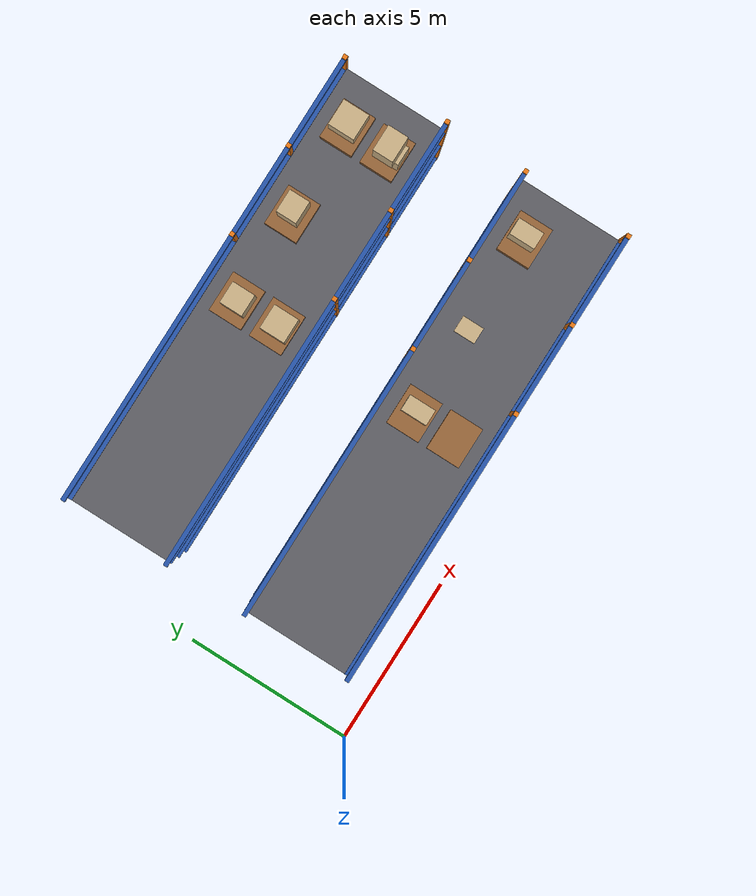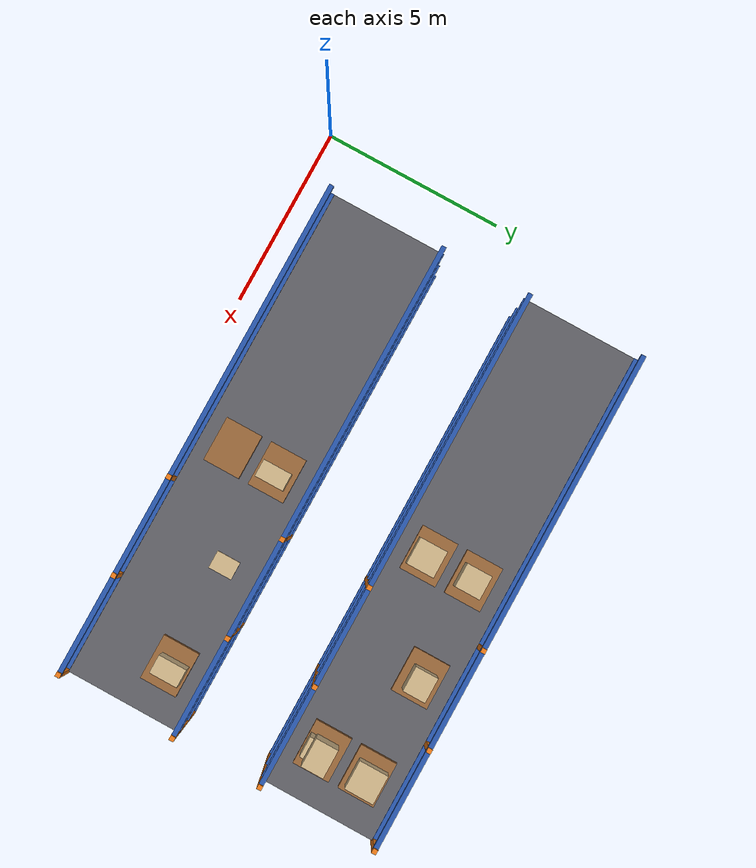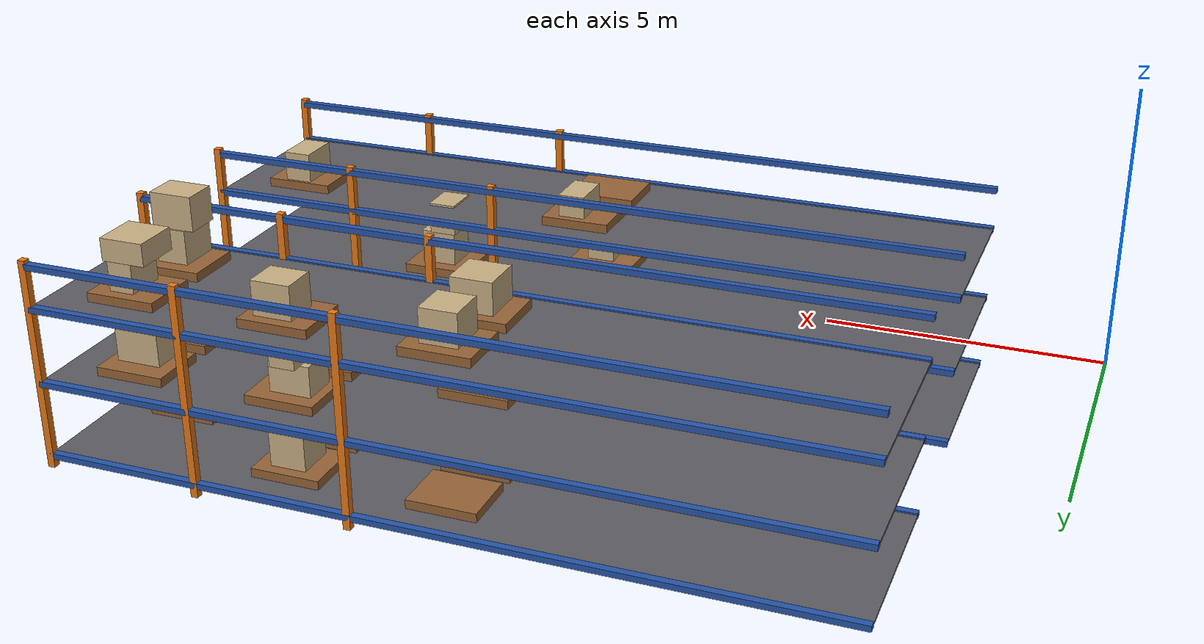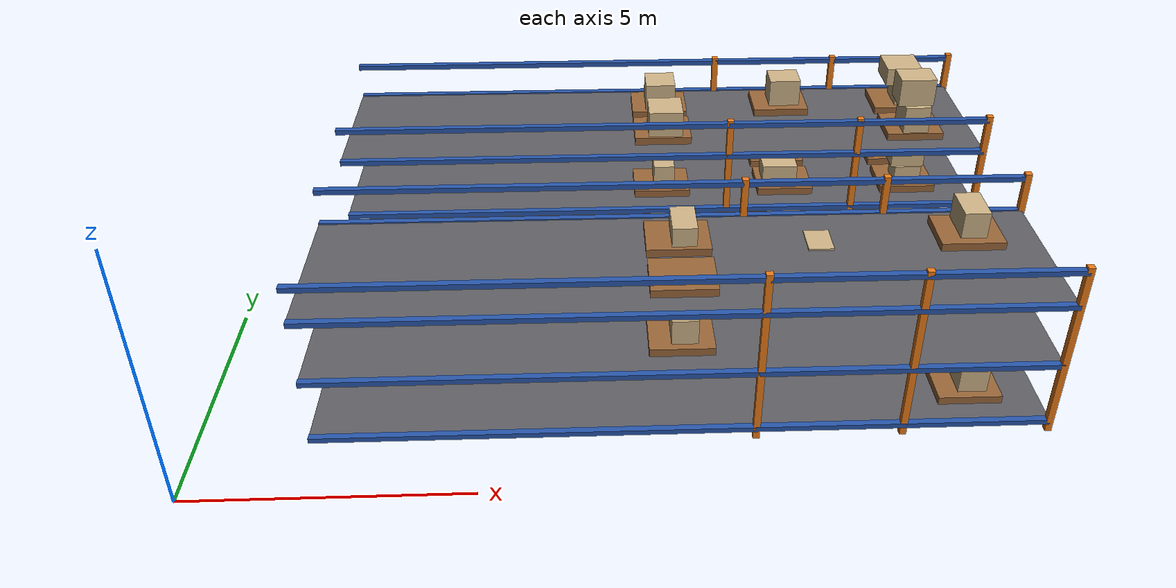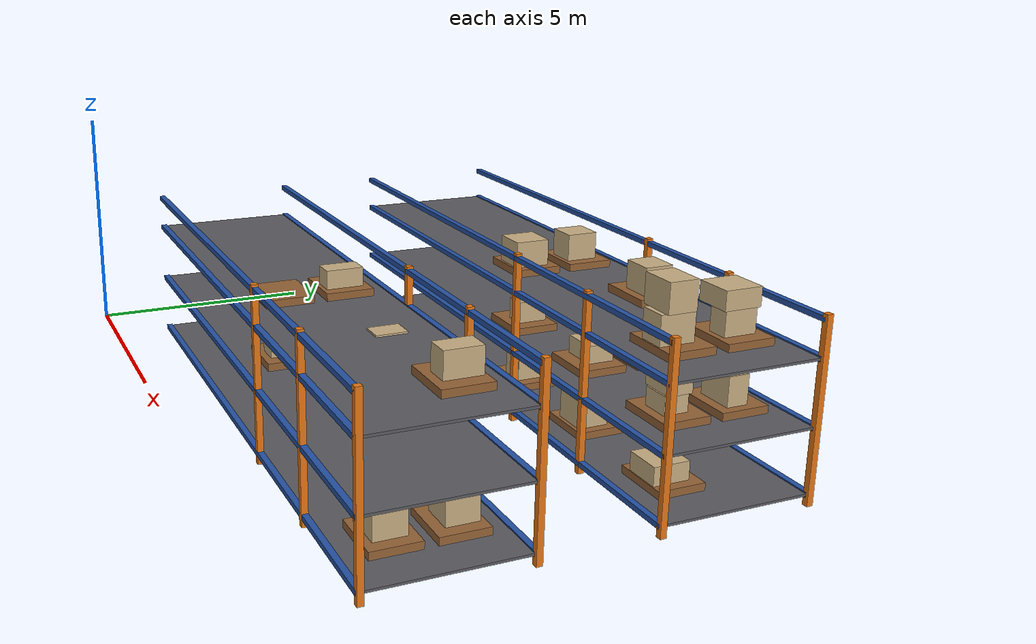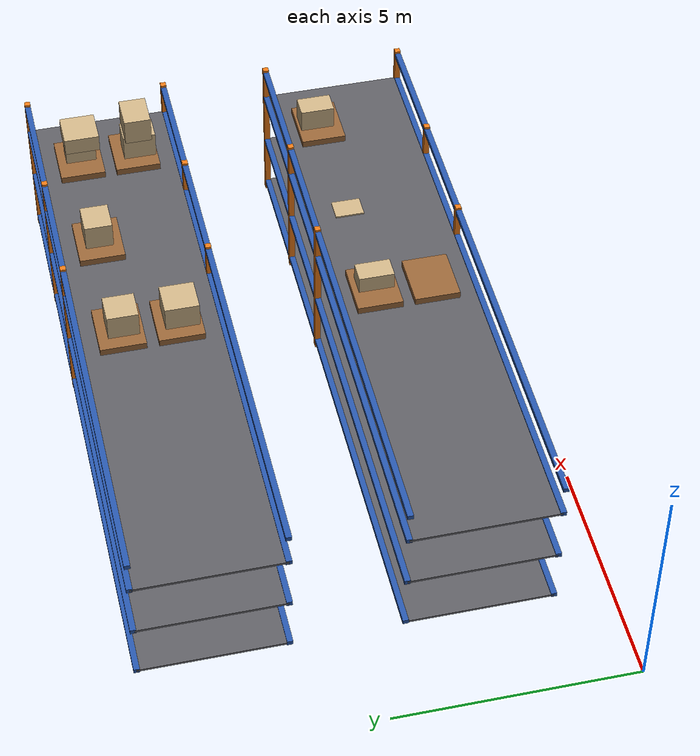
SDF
<sdf version="1.7">
 <world name="default">
  <model name="warehouse_racks">
   <static>1</static>
   <link name="r21_u3_0">
    <pose>9.8 1.2 1.75 0 0 0</pose>
    <collision name="c"><geometry><box><size>0.12 0.12 3.5</size></box></geometry></collision>
    <visual name="v">
     <geometry><box><size>0.12 0.12 3.5</size></box></geometry>
     <material>
      <ambient>0.910 0.471 0.086 1</ambient>
      <diffuse>0.910 0.471 0.086 1</diffuse>
      <specular>0.1 0.1 0.1 1</specular>
     </material>
    </visual>
   </link>
   <link name="r21_u3_1">
    <pose>9.8 4.2 1.75 0 0 0</pose>
    <collision name="c"><geometry><box><size>0.12 0.12 3.5</size></box></geometry></collision>
    <visual name="v">
     <geometry><box><size>0.12 0.12 3.5</size></box></geometry>
     <material>
      <ambient>0.910 0.471 0.086 1</ambient>
      <diffuse>0.910 0.471 0.086 1</diffuse>
      <specular>0.1 0.1 0.1 1</specular>
     </material>
    </visual>
   </link>
   <link name="r21_u4_0">
    <pose>12.4 1.2 1.75 0 0 0</pose>
    <collision name="c"><geometry><box><size>0.12 0.12 3.5</size></box></geometry></collision>
    <visual name="v">
     <geometry><box><size>0.12 0.12 3.5</size></box></geometry>
     <material>
      <ambient>0.910 0.471 0.086 1</ambient>
      <diffuse>0.910 0.471 0.086 1</diffuse>
      <specular>0.1 0.1 0.1 1</specular>
     </material>
    </visual>
   </link>
   <link name="r21_u4_1">
    <pose>12.4 4.2 1.75 0 0 0</pose>
    <collision name="c"><geometry><box><size>0.12 0.12 3.5</size></box></geometry></collision>
    <visual name="v">
     <geometry><box><size>0.12 0.12 3.5</size></box></geometry>
     <material>
      <ambient>0.910 0.471 0.086 1</ambient>
      <diffuse>0.910 0.471 0.086 1</diffuse>
      <specular>0.1 0.1 0.1 1</specular>
     </material>
    </visual>
   </link>
   <link name="r21_u5_0">
    <pose>15 1.2 1.75 0 0 0</pose>
    <collision name="c"><geometry><box><size>0.12 0.12 3.5</size></box></geometry></collision>
    <visual name="v">
     <geometry><box><size>0.12 0.12 3.5</size></box></geometry>
     <material>
      <ambient>0.910 0.471 0.086 1</ambient>
      <diffuse>0.910 0.471 0.086 1</diffuse>
      <specular>0.1 0.1 0.1 1</specular>
     </material>
    </visual>
   </link>
   <link name="r21_u5_1">
    <pose>15 4.2 1.75 0 0 0</pose>
    <collision name="c"><geometry><box><size>0.12 0.12 3.5</size></box></geometry></collision>
    <visual name="v">
     <geometry><box><size>0.12 0.12 3.5</size></box></geometry>
     <material>
      <ambient>0.910 0.471 0.086 1</ambient>
      <diffuse>0.910 0.471 0.086 1</diffuse>
      <specular>0.1 0.1 0.1 1</specular>
     </material>
    </visual>
   </link>
   <link name="r21_b0_0">
    <pose>8.5 1.2 0.2 0 0 0</pose>
    <collision name="c"><geometry><box><size>13 0.12 0.1</size></box></geometry></collision>
    <visual name="v">
     <geometry><box><size>13 0.12 0.1</size></box></geometry>
     <material>
      <ambient>0.149 0.329 0.659 1</ambient>
      <diffuse>0.149 0.329 0.659 1</diffuse>
      <specular>0.1 0.1 0.1 1</specular>
     </material>
    </visual>
   </link>
   <link name="r21_b0_1">
    <pose>8.5 4.2 0.2 0 0 0</pose>
    <collision name="c"><geometry><box><size>13 0.12 0.1</size></box></geometry></collision>
    <visual name="v">
     <geometry><box><size>13 0.12 0.1</size></box></geometry>
     <material>
      <ambient>0.149 0.329 0.659 1</ambient>
      <diffuse>0.149 0.329 0.659 1</diffuse>
      <specular>0.1 0.1 0.1 1</specular>
     </material>
    </visual>
   </link>
   <link name="r21_b1_0">
    <pose>8.5 1.2 1.45 0 0 0</pose>
    <collision name="c"><geometry><box><size>13 0.12 0.1</size></box></geometry></collision>
    <visual name="v">
     <geometry><box><size>13 0.12 0.1</size></box></geometry>
     <material>
      <ambient>0.149 0.329 0.659 1</ambient>
      <diffuse>0.149 0.329 0.659 1</diffuse>
      <specular>0.1 0.1 0.1 1</specular>
     </material>
    </visual>
   </link>
   <link name="r21_b1_1">
    <pose>8.5 4.2 1.45 0 0 0</pose>
    <collision name="c"><geometry><box><size>13 0.12 0.1</size></box></geometry></collision>
    <visual name="v">
     <geometry><box><size>13 0.12 0.1</size></box></geometry>
     <material>
      <ambient>0.149 0.329 0.659 1</ambient>
      <diffuse>0.149 0.329 0.659 1</diffuse>
      <specular>0.1 0.1 0.1 1</specular>
     </material>
    </visual>
   </link>
   <link name="r21_b2_0">
    <pose>8.5 1.2 2.7 0 0 0</pose>
    <collision name="c"><geometry><box><size>13 0.12 0.1</size></box></geometry></collision>
    <visual name="v">
     <geometry><box><size>13 0.12 0.1</size></box></geometry>
     <material>
      <ambient>0.149 0.329 0.659 1</ambient>
      <diffuse>0.149 0.329 0.659 1</diffuse>
      <specular>0.1 0.1 0.1 1</specular>
     </material>
    </visual>
   </link>
   <link name="r21_b2_1">
    <pose>8.5 4.2 2.7 0 0 0</pose>
    <collision name="c"><geometry><box><size>13 0.12 0.1</size></box></geometry></collision>
    <visual name="v">
     <geometry><box><size>13 0.12 0.1</size></box></geometry>
     <material>
      <ambient>0.149 0.329 0.659 1</ambient>
      <diffuse>0.149 0.329 0.659 1</diffuse>
      <specular>0.1 0.1 0.1 1</specular>
     </material>
    </visual>
   </link>
   <link name="r21_b3_0">
    <pose>8.5 1.2 3.4 0 0 0</pose>
    <collision name="c"><geometry><box><size>13 0.12 0.1</size></box></geometry></collision>
    <visual name="v">
     <geometry><box><size>13 0.12 0.1</size></box></geometry>
     <material>
      <ambient>0.149 0.329 0.659 1</ambient>
      <diffuse>0.149 0.329 0.659 1</diffuse>
      <specular>0.1 0.1 0.1 1</specular>
     </material>
    </visual>
   </link>
   <link name="r21_b3_1">
    <pose>8.5 4.2 3.4 0 0 0</pose>
    <collision name="c"><geometry><box><size>13 0.12 0.1</size></box></geometry></collision>
    <visual name="v">
     <geometry><box><size>13 0.12 0.1</size></box></geometry>
     <material>
      <ambient>0.149 0.329 0.659 1</ambient>
      <diffuse>0.149 0.329 0.659 1</diffuse>
      <specular>0.1 0.1 0.1 1</specular>
     </material>
    </visual>
   </link>
   <link name="r21_d0">
    <pose>8.5 2.7 0.2 0 0 0</pose>
    <collision name="c"><geometry><box><size>13 3 0.05</size></box></geometry></collision>
    <visual name="v">
     <geometry><box><size>13 3 0.05</size></box></geometry>
     <material>
      <ambient>0.361 0.361 0.384 1</ambient>
      <diffuse>0.361 0.361 0.384 1</diffuse>
      <specular>0.1 0.1 0.1 1</specular>
     </material>
    </visual>
   </link>
   <link name="r21_d1">
    <pose>8.5 2.7 1.45 0 0 0</pose>
    <collision name="c"><geometry><box><size>13 3 0.05</size></box></geometry></collision>
    <visual name="v">
     <geometry><box><size>13 3 0.05</size></box></geometry>
     <material>
      <ambient>0.361 0.361 0.384 1</ambient>
      <diffuse>0.361 0.361 0.384 1</diffuse>
      <specular>0.1 0.1 0.1 1</specular>
     </material>
    </visual>
   </link>
   <link name="r21_d2">
    <pose>8.5 2.7 2.7 0 0 0</pose>
    <collision name="c"><geometry><box><size>13 3 0.05</size></box></geometry></collision>
    <visual name="v">
     <geometry><box><size>13 3 0.05</size></box></geometry>
     <material>
      <ambient>0.361 0.361 0.384 1</ambient>
      <diffuse>0.361 0.361 0.384 1</diffuse>
      <specular>0.1 0.1 0.1 1</specular>
     </material>
    </visual>
   </link>
   <link name="r31_u3_0">
    <pose>9.8 6.5 1.75 0 0 0</pose>
    <collision name="c"><geometry><box><size>0.12 0.12 3.5</size></box></geometry></collision>
    <visual name="v">
     <geometry><box><size>0.12 0.12 3.5</size></box></geometry>
     <material>
      <ambient>0.910 0.471 0.086 1</ambient>
      <diffuse>0.910 0.471 0.086 1</diffuse>
      <specular>0.1 0.1 0.1 1</specular>
     </material>
    </visual>
   </link>
   <link name="r31_u3_1">
    <pose>9.8 9.5 1.75 0 0 0</pose>
    <collision name="c"><geometry><box><size>0.12 0.12 3.5</size></box></geometry></collision>
    <visual name="v">
     <geometry><box><size>0.12 0.12 3.5</size></box></geometry>
     <material>
      <ambient>0.910 0.471 0.086 1</ambient>
      <diffuse>0.910 0.471 0.086 1</diffuse>
      <specular>0.1 0.1 0.1 1</specular>
     </material>
    </visual>
   </link>
   <link name="r31_u4_0">
    <pose>12.4 6.5 1.75 0 0 0</pose>
    <collision name="c"><geometry><box><size>0.12 0.12 3.5</size></box></geometry></collision>
    <visual name="v">
     <geometry><box><size>0.12 0.12 3.5</size></box></geometry>
     <material>
      <ambient>0.910 0.471 0.086 1</ambient>
      <diffuse>0.910 0.471 0.086 1</diffuse>
      <specular>0.1 0.1 0.1 1</specular>
     </material>
    </visual>
   </link>
   <link name="r31_u4_1">
    <pose>12.4 9.5 1.75 0 0 0</pose>
    <collision name="c"><geometry><box><size>0.12 0.12 3.5</size></box></geometry></collision>
    <visual name="v">
     <geometry><box><size>0.12 0.12 3.5</size></box></geometry>
     <material>
      <ambient>0.910 0.471 0.086 1</ambient>
      <diffuse>0.910 0.471 0.086 1</diffuse>
      <specular>0.1 0.1 0.1 1</specular>
     </material>
    </visual>
   </link>
   <link name="r31_u5_0">
    <pose>15 6.5 1.75 0 0 0</pose>
    <collision name="c"><geometry><box><size>0.12 0.12 3.5</size></box></geometry></collision>
    <visual name="v">
     <geometry><box><size>0.12 0.12 3.5</size></box></geometry>
     <material>
      <ambient>0.910 0.471 0.086 1</ambient>
      <diffuse>0.910 0.471 0.086 1</diffuse>
      <specular>0.1 0.1 0.1 1</specular>
     </material>
    </visual>
   </link>
   <link name="r31_u5_1">
    <pose>15 9.5 1.75 0 0 0</pose>
    <collision name="c"><geometry><box><size>0.12 0.12 3.5</size></box></geometry></collision>
    <visual name="v">
     <geometry><box><size>0.12 0.12 3.5</size></box></geometry>
     <material>
      <ambient>0.910 0.471 0.086 1</ambient>
      <diffuse>0.910 0.471 0.086 1</diffuse>
      <specular>0.1 0.1 0.1 1</specular>
     </material>
    </visual>
   </link>
   <link name="r31_b0_0">
    <pose>8.5 6.5 0.2 0 0 0</pose>
    <collision name="c"><geometry><box><size>13 0.12 0.1</size></box></geometry></collision>
    <visual name="v">
     <geometry><box><size>13 0.12 0.1</size></box></geometry>
     <material>
      <ambient>0.149 0.329 0.659 1</ambient>
      <diffuse>0.149 0.329 0.659 1</diffuse>
      <specular>0.1 0.1 0.1 1</specular>
     </material>
    </visual>
   </link>
   <link name="r31_b0_1">
    <pose>8.5 9.5 0.2 0 0 0</pose>
    <collision name="c"><geometry><box><size>13 0.12 0.1</size></box></geometry></collision>
    <visual name="v">
     <geometry><box><size>13 0.12 0.1</size></box></geometry>
     <material>
      <ambient>0.149 0.329 0.659 1</ambient>
      <diffuse>0.149 0.329 0.659 1</diffuse>
      <specular>0.1 0.1 0.1 1</specular>
     </material>
    </visual>
   </link>
   <link name="r31_b1_0">
    <pose>8.5 6.5 1.45 0 0 0</pose>
    <collision name="c"><geometry><box><size>13 0.12 0.1</size></box></geometry></collision>
    <visual name="v">
     <geometry><box><size>13 0.12 0.1</size></box></geometry>
     <material>
      <ambient>0.149 0.329 0.659 1</ambient>
      <diffuse>0.149 0.329 0.659 1</diffuse>
      <specular>0.1 0.1 0.1 1</specular>
     </material>
    </visual>
   </link>
   <link name="r31_b1_1">
    <pose>8.5 9.5 1.45 0 0 0</pose>
    <collision name="c"><geometry><box><size>13 0.12 0.1</size></box></geometry></collision>
    <visual name="v">
     <geometry><box><size>13 0.12 0.1</size></box></geometry>
     <material>
      <ambient>0.149 0.329 0.659 1</ambient>
      <diffuse>0.149 0.329 0.659 1</diffuse>
      <specular>0.1 0.1 0.1 1</specular>
     </material>
    </visual>
   </link>
   <link name="r31_b2_0">
    <pose>8.5 6.5 2.7 0 0 0</pose>
    <collision name="c"><geometry><box><size>13 0.12 0.1</size></box></geometry></collision>
    <visual name="v">
     <geometry><box><size>13 0.12 0.1</size></box></geometry>
     <material>
      <ambient>0.149 0.329 0.659 1</ambient>
      <diffuse>0.149 0.329 0.659 1</diffuse>
      <specular>0.1 0.1 0.1 1</specular>
     </material>
    </visual>
   </link>
   <link name="r31_b2_1">
    <pose>8.5 9.5 2.7 0 0 0</pose>
    <collision name="c"><geometry><box><size>13 0.12 0.1</size></box></geometry></collision>
    <visual name="v">
     <geometry><box><size>13 0.12 0.1</size></box></geometry>
     <material>
      <ambient>0.149 0.329 0.659 1</ambient>
      <diffuse>0.149 0.329 0.659 1</diffuse>
      <specular>0.1 0.1 0.1 1</specular>
     </material>
    </visual>
   </link>
   <link name="r31_b3_0">
    <pose>8.5 6.5 3.4 0 0 0</pose>
    <collision name="c"><geometry><box><size>13 0.12 0.1</size></box></geometry></collision>
    <visual name="v">
     <geometry><box><size>13 0.12 0.1</size></box></geometry>
     <material>
      <ambient>0.149 0.329 0.659 1</ambient>
      <diffuse>0.149 0.329 0.659 1</diffuse>
      <specular>0.1 0.1 0.1 1</specular>
     </material>
    </visual>
   </link>
   <link name="r31_b3_1">
    <pose>8.5 9.5 3.4 0 0 0</pose>
    <collision name="c"><geometry><box><size>13 0.12 0.1</size></box></geometry></collision>
    <visual name="v">
     <geometry><box><size>13 0.12 0.1</size></box></geometry>
     <material>
      <ambient>0.149 0.329 0.659 1</ambient>
      <diffuse>0.149 0.329 0.659 1</diffuse>
      <specular>0.1 0.1 0.1 1</specular>
     </material>
    </visual>
   </link>
   <link name="r31_d0">
    <pose>8.5 8 0.2 0 0 0</pose>
    <collision name="c"><geometry><box><size>13 3 0.05</size></box></geometry></collision>
    <visual name="v">
     <geometry><box><size>13 3 0.05</size></box></geometry>
     <material>
      <ambient>0.361 0.361 0.384 1</ambient>
      <diffuse>0.361 0.361 0.384 1</diffuse>
      <specular>0.1 0.1 0.1 1</specular>
     </material>
    </visual>
   </link>
   <link name="r31_d1">
    <pose>8.5 8 1.45 0 0 0</pose>
    <collision name="c"><geometry><box><size>13 3 0.05</size></box></geometry></collision>
    <visual name="v">
     <geometry><box><size>13 3 0.05</size></box></geometry>
     <material>
      <ambient>0.361 0.361 0.384 1</ambient>
      <diffuse>0.361 0.361 0.384 1</diffuse>
      <specular>0.1 0.1 0.1 1</specular>
     </material>
    </visual>
   </link>
   <link name="r31_d2">
    <pose>8.5 8 2.7 0 0 0</pose>
    <collision name="c"><geometry><box><size>13 3 0.05</size></box></geometry></collision>
    <visual name="v">
     <geometry><box><size>13 3 0.05</size></box></geometry>
     <material>
      <ambient>0.361 0.361 0.384 1</ambient>
      <diffuse>0.361 0.361 0.384 1</diffuse>
      <specular>0.1 0.1 0.1 1</specular>
     </material>
    </visual>
   </link>
  </model>
  <model name="warehouse_loads">
   <static>1</static>
   <link name="r21L0_4_0_p">
    <pose>13.7 2.1 0.325 0 0 0</pose>
    <collision name="c"><geometry><box><size>1.15 0.95 0.15</size></box></geometry></collision>
    <visual name="v">
     <geometry><box><size>1.15 0.95 0.15</size></box></geometry>
     <material>
      <ambient>0.588 0.392 0.216 1</ambient>
      <diffuse>0.588 0.392 0.216 1</diffuse>
      <specular>0.1 0.1 0.1 1</specular>
     </material>
    </visual>
   </link>
   <link name="r21L0_4_0_c0">
    <pose>13.7632 2.09362 0.677342 0 0 0</pose>
    <collision name="c"><geometry><box><size>0.523596 0.623579 0.554685</size></box></geometry></collision>
    <visual name="v">
     <geometry><box><size>0.523596 0.623579 0.554685</size></box></geometry>
     <material>
      <ambient>0.792 0.690 0.518 1</ambient>
      <diffuse>0.792 0.690 0.518 1</diffuse>
      <specular>0.1 0.1 0.1 1</specular>
     </material>
    </visual>
   </link>
   <link name="r21L0_4_1_p">
    <pose>13.7 3.3 0.325 0 0 0</pose>
    <collision name="c"><geometry><box><size>1.15 0.95 0.15</size></box></geometry></collision>
    <visual name="v">
     <geometry><box><size>1.15 0.95 0.15</size></box></geometry>
     <material>
      <ambient>0.588 0.392 0.216 1</ambient>
      <diffuse>0.588 0.392 0.216 1</diffuse>
      <specular>0.1 0.1 0.1 1</specular>
     </material>
    </visual>
   </link>
   <link name="r21L0_4_1_c0">
    <pose>13.6939 3.35672 0.672481 0 0 0</pose>
    <collision name="c"><geometry><box><size>0.665961 0.627363 0.544962</size></box></geometry></collision>
    <visual name="v">
     <geometry><box><size>0.665961 0.627363 0.544962</size></box></geometry>
     <material>
      <ambient>0.792 0.690 0.518 1</ambient>
      <diffuse>0.792 0.690 0.518 1</diffuse>
      <specular>0.1 0.1 0.1 1</specular>
     </material>
    </visual>
   </link>
   <link name="r21L0_4_1_c1">
    <pose>13.7966 3.33576 1.20589 0 0 0</pose>
    <collision name="c"><geometry><box><size>0.480659 0.64647 0.521863</size></box></geometry></collision>
    <visual name="v">
     <geometry><box><size>0.480659 0.64647 0.521863</size></box></geometry>
     <material>
      <ambient>0.792 0.690 0.518 1</ambient>
      <diffuse>0.792 0.690 0.518 1</diffuse>
      <specular>0.1 0.1 0.1 1</specular>
     </material>
    </visual>
   </link>
   <link name="r21L1_2_0_p">
    <pose>8.5 2.1 1.575 0 0 0</pose>
    <collision name="c"><geometry><box><size>1.15 0.95 0.15</size></box></geometry></collision>
    <visual name="v">
     <geometry><box><size>1.15 0.95 0.15</size></box></geometry>
     <material>
      <ambient>0.588 0.392 0.216 1</ambient>
      <diffuse>0.588 0.392 0.216 1</diffuse>
      <specular>0.1 0.1 0.1 1</specular>
     </material>
    </visual>
   </link>
   <link name="r21L1_2_0_c0">
    <pose>8.54838 2.08772 1.89135 0 0 0</pose>
    <collision name="c"><geometry><box><size>0.46908 0.642477 0.482699</size></box></geometry></collision>
    <visual name="v">
     <geometry><box><size>0.46908 0.642477 0.482699</size></box></geometry>
     <material>
      <ambient>0.792 0.690 0.518 1</ambient>
      <diffuse>0.792 0.690 0.518 1</diffuse>
      <specular>0.1 0.1 0.1 1</specular>
     </material>
    </visual>
   </link>
   <link name="r21L1_3_1_p">
    <pose>11.1 3.3 1.575 0 0 0</pose>
    <collision name="c"><geometry><box><size>1.15 0.95 0.15</size></box></geometry></collision>
    <visual name="v">
     <geometry><box><size>1.15 0.95 0.15</size></box></geometry>
     <material>
      <ambient>0.588 0.392 0.216 1</ambient>
      <diffuse>0.588 0.392 0.216 1</diffuse>
      <specular>0.1 0.1 0.1 1</specular>
     </material>
    </visual>
   </link>
   <link name="r21L1_3_1_c0">
    <pose>11.1401 3.24931 1.93818 0 0 0</pose>
    <collision name="c"><geometry><box><size>0.595021 0.56953 0.576366</size></box></geometry></collision>
    <visual name="v">
     <geometry><box><size>0.595021 0.56953 0.576366</size></box></geometry>
     <material>
      <ambient>0.792 0.690 0.518 1</ambient>
      <diffuse>0.792 0.690 0.518 1</diffuse>
      <specular>0.1 0.1 0.1 1</specular>
     </material>
    </visual>
   </link>
   <link name="r21L1_3_1_c1">
    <pose>11.0321 3.26414 2.49319 0 0 0</pose>
    <collision name="c"><geometry><box><size>0.457616 0.609861 0.533647</size></box></geometry></collision>
    <visual name="v">
     <geometry><box><size>0.457616 0.609861 0.533647</size></box></geometry>
     <material>
      <ambient>0.792 0.690 0.518 1</ambient>
      <diffuse>0.792 0.690 0.518 1</diffuse>
      <specular>0.1 0.1 0.1 1</specular>
     </material>
    </visual>
   </link>
   <link name="r21L2_2_0_p">
    <pose>8.5 2.1 2.825 0 0 0</pose>
    <collision name="c"><geometry><box><size>1.15 0.95 0.15</size></box></geometry></collision>
    <visual name="v">
     <geometry><box><size>1.15 0.95 0.15</size></box></geometry>
     <material>
      <ambient>0.588 0.392 0.216 1</ambient>
      <diffuse>0.588 0.392 0.216 1</diffuse>
      <specular>0.1 0.1 0.1 1</specular>
     </material>
    </visual>
   </link>
   <link name="r21L2_2_1_p">
    <pose>8.5 3.3 2.825 0 0 0</pose>
    <collision name="c"><geometry><box><size>1.15 0.95 0.15</size></box></geometry></collision>
    <visual name="v">
     <geometry><box><size>1.15 0.95 0.15</size></box></geometry>
     <material>
      <ambient>0.588 0.392 0.216 1</ambient>
      <diffuse>0.588 0.392 0.216 1</diffuse>
      <specular>0.1 0.1 0.1 1</specular>
     </material>
    </visual>
   </link>
   <link name="r21L2_2_1_c0">
    <pose>8.5993 3.27978 3.08595 0 0 0</pose>
    <collision name="c"><geometry><box><size>0.44465 0.740462 0.371894</size></box></geometry></collision>
    <visual name="v">
     <geometry><box><size>0.44465 0.740462 0.371894</size></box></geometry>
     <material>
      <ambient>0.792 0.690 0.518 1</ambient>
      <diffuse>0.792 0.690 0.518 1</diffuse>
      <specular>0.1 0.1 0.1 1</specular>
     </material>
    </visual>
   </link>
   <link name="r21L2_4_1_p">
    <pose>13.7 3.3 2.825 0 0 0</pose>
    <collision name="c"><geometry><box><size>1.15 0.95 0.15</size></box></geometry></collision>
    <visual name="v">
     <geometry><box><size>1.15 0.95 0.15</size></box></geometry>
     <material>
      <ambient>0.588 0.392 0.216 1</ambient>
      <diffuse>0.588 0.392 0.216 1</diffuse>
      <specular>0.1 0.1 0.1 1</specular>
     </material>
    </visual>
   </link>
   <link name="r21L2_4_1_c0">
    <pose>13.7316 3.35781 3.15109 0 0 0</pose>
    <collision name="c"><geometry><box><size>0.466479 0.722501 0.502171</size></box></geometry></collision>
    <visual name="v">
     <geometry><box><size>0.466479 0.722501 0.502171</size></box></geometry>
     <material>
      <ambient>0.792 0.690 0.518 1</ambient>
      <diffuse>0.792 0.690 0.518 1</diffuse>
      <specular>0.1 0.1 0.1 1</specular>
     </material>
    </visual>
   </link>
   <link name="r31L0_2_0_p">
    <pose>8.5 7.4 0.325 0 0 0</pose>
    <collision name="c"><geometry><box><size>1.15 0.95 0.15</size></box></geometry></collision>
    <visual name="v">
     <geometry><box><size>1.15 0.95 0.15</size></box></geometry>
     <material>
      <ambient>0.588 0.392 0.216 1</ambient>
      <diffuse>0.588 0.392 0.216 1</diffuse>
      <specular>0.1 0.1 0.1 1</specular>
     </material>
    </visual>
   </link>
   <link name="r31L0_2_0_c0">
    <pose>8.56377 7.49269 0.670906 0 0 0</pose>
    <collision name="c"><geometry><box><size>0.549082 0.731275 0.541812</size></box></geometry></collision>
    <visual name="v">
     <geometry><box><size>0.549082 0.731275 0.541812</size></box></geometry>
     <material>
      <ambient>0.792 0.690 0.518 1</ambient>
      <diffuse>0.792 0.690 0.518 1</diffuse>
      <specular>0.1 0.1 0.1 1</specular>
     </material>
    </visual>
   </link>
   <link name="r31L0_2_1_p">
    <pose>8.5 8.6 0.325 0 0 0</pose>
    <collision name="c"><geometry><box><size>1.15 0.95 0.15</size></box></geometry></collision>
    <visual name="v">
     <geometry><box><size>1.15 0.95 0.15</size></box></geometry>
     <material>
      <ambient>0.588 0.392 0.216 1</ambient>
      <diffuse>0.588 0.392 0.216 1</diffuse>
      <specular>0.1 0.1 0.1 1</specular>
     </material>
    </visual>
   </link>
   <link name="r31L0_3_0_p">
    <pose>11.1 7.4 0.325 0 0 0</pose>
    <collision name="c"><geometry><box><size>1.15 0.95 0.15</size></box></geometry></collision>
    <visual name="v">
     <geometry><box><size>1.15 0.95 0.15</size></box></geometry>
     <material>
      <ambient>0.588 0.392 0.216 1</ambient>
      <diffuse>0.588 0.392 0.216 1</diffuse>
      <specular>0.1 0.1 0.1 1</specular>
     </material>
    </visual>
   </link>
   <link name="r31L0_3_0_c0">
    <pose>11.1413 7.31799 0.690269 0 0 0</pose>
    <collision name="c"><geometry><box><size>0.70204 0.623945 0.580539</size></box></geometry></collision>
    <visual name="v">
     <geometry><box><size>0.70204 0.623945 0.580539</size></box></geometry>
     <material>
      <ambient>0.792 0.690 0.518 1</ambient>
      <diffuse>0.792 0.690 0.518 1</diffuse>
      <specular>0.1 0.1 0.1 1</specular>
     </material>
    </visual>
   </link>
   <link name="r31L0_3_1_p">
    <pose>11.1 8.6 0.325 0 0 0</pose>
    <collision name="c"><geometry><box><size>1.15 0.95 0.15</size></box></geometry></collision>
    <visual name="v">
     <geometry><box><size>1.15 0.95 0.15</size></box></geometry>
     <material>
      <ambient>0.588 0.392 0.216 1</ambient>
      <diffuse>0.588 0.392 0.216 1</diffuse>
      <specular>0.1 0.1 0.1 1</specular>
     </material>
    </visual>
   </link>
   <link name="r31L0_3_1_c0">
    <pose>11.1339 8.57862 0.694553 0 0 0</pose>
    <collision name="c"><geometry><box><size>0.597567 0.624222 0.589105</size></box></geometry></collision>
    <visual name="v">
     <geometry><box><size>0.597567 0.624222 0.589105</size></box></geometry>
     <material>
      <ambient>0.792 0.690 0.518 1</ambient>
      <diffuse>0.792 0.690 0.518 1</diffuse>
      <specular>0.1 0.1 0.1 1</specular>
     </material>
    </visual>
   </link>
   <link name="r31L0_3_1_c1">
    <pose>11.1983 8.54434 1.28483 0 0 0</pose>
    <collision name="c"><geometry><box><size>0.55692 0.455905 0.591442</size></box></geometry></collision>
    <visual name="v">
     <geometry><box><size>0.55692 0.455905 0.591442</size></box></geometry>
     <material>
      <ambient>0.792 0.690 0.518 1</ambient>
      <diffuse>0.792 0.690 0.518 1</diffuse>
      <specular>0.1 0.1 0.1 1</specular>
     </material>
    </visual>
   </link>
   <link name="r31L0_4_0_p">
    <pose>13.7 7.4 0.325 0 0 0</pose>
    <collision name="c"><geometry><box><size>1.15 0.95 0.15</size></box></geometry></collision>
    <visual name="v">
     <geometry><box><size>1.15 0.95 0.15</size></box></geometry>
     <material>
      <ambient>0.588 0.392 0.216 1</ambient>
      <diffuse>0.588 0.392 0.216 1</diffuse>
      <specular>0.1 0.1 0.1 1</specular>
     </material>
    </visual>
   </link>
   <link name="r31L0_4_0_c0">
    <pose>13.7106 7.30556 0.58241 0 0 0</pose>
    <collision name="c"><geometry><box><size>0.7296 0.729409 0.364819</size></box></geometry></collision>
    <visual name="v">
     <geometry><box><size>0.7296 0.729409 0.364819</size></box></geometry>
     <material>
      <ambient>0.792 0.690 0.518 1</ambient>
      <diffuse>0.792 0.690 0.518 1</diffuse>
      <specular>0.1 0.1 0.1 1</specular>
     </material>
    </visual>
   </link>
   <link name="r31L1_2_0_p">
    <pose>8.5 7.4 1.575 0 0 0</pose>
    <collision name="c"><geometry><box><size>1.15 0.95 0.15</size></box></geometry></collision>
    <visual name="v">
     <geometry><box><size>1.15 0.95 0.15</size></box></geometry>
     <material>
      <ambient>0.588 0.392 0.216 1</ambient>
      <diffuse>0.588 0.392 0.216 1</diffuse>
      <specular>0.1 0.1 0.1 1</specular>
     </material>
    </visual>
   </link>
   <link name="r31L1_2_0_c0">
    <pose>8.54982 7.45566 1.87164 0 0 0</pose>
    <collision name="c"><geometry><box><size>0.427225 0.616529 0.443274</size></box></geometry></collision>
    <visual name="v">
     <geometry><box><size>0.427225 0.616529 0.443274</size></box></geometry>
     <material>
      <ambient>0.792 0.690 0.518 1</ambient>
      <diffuse>0.792 0.690 0.518 1</diffuse>
      <specular>0.1 0.1 0.1 1</specular>
     </material>
    </visual>
   </link>
   <link name="r31L1_3_0_p">
    <pose>11.1 7.4 1.575 0 0 0</pose>
    <collision name="c"><geometry><box><size>1.15 0.95 0.15</size></box></geometry></collision>
    <visual name="v">
     <geometry><box><size>1.15 0.95 0.15</size></box></geometry>
     <material>
      <ambient>0.588 0.392 0.216 1</ambient>
      <diffuse>0.588 0.392 0.216 1</diffuse>
      <specular>0.1 0.1 0.1 1</specular>
     </material>
    </visual>
   </link>
   <link name="r31L1_3_0_c0">
    <pose>11.015 7.49446 1.82772 0 0 0</pose>
    <collision name="c"><geometry><box><size>0.724079 0.534778 0.355434</size></box></geometry></collision>
    <visual name="v">
     <geometry><box><size>0.724079 0.534778 0.355434</size></box></geometry>
     <material>
      <ambient>0.792 0.690 0.518 1</ambient>
      <diffuse>0.792 0.690 0.518 1</diffuse>
      <specular>0.1 0.1 0.1 1</specular>
     </material>
    </visual>
   </link>
   <link name="r31L1_3_1_p">
    <pose>11.1 8.6 1.575 0 0 0</pose>
    <collision name="c"><geometry><box><size>1.15 0.95 0.15</size></box></geometry></collision>
    <visual name="v">
     <geometry><box><size>1.15 0.95 0.15</size></box></geometry>
     <material>
      <ambient>0.588 0.392 0.216 1</ambient>
      <diffuse>0.588 0.392 0.216 1</diffuse>
      <specular>0.1 0.1 0.1 1</specular>
     </material>
    </visual>
   </link>
   <link name="r31L1_3_1_c0">
    <pose>11.0286 8.54433 1.90352 0 0 0</pose>
    <collision name="c"><geometry><box><size>0.688071 0.567138 0.507046</size></box></geometry></collision>
    <visual name="v">
     <geometry><box><size>0.688071 0.567138 0.507046</size></box></geometry>
     <material>
      <ambient>0.792 0.690 0.518 1</ambient>
      <diffuse>0.792 0.690 0.518 1</diffuse>
      <specular>0.1 0.1 0.1 1</specular>
     </material>
    </visual>
   </link>
   <link name="r31L1_3_1_c1">
    <pose>11.0289 8.67414 2.40122 0 0 0</pose>
    <collision name="c"><geometry><box><size>0.419854 0.649804 0.488344</size></box></geometry></collision>
    <visual name="v">
     <geometry><box><size>0.419854 0.649804 0.488344</size></box></geometry>
     <material>
      <ambient>0.792 0.690 0.518 1</ambient>
      <diffuse>0.792 0.690 0.518 1</diffuse>
      <specular>0.1 0.1 0.1 1</specular>
     </material>
    </visual>
   </link>
   <link name="r31L1_4_0_p">
    <pose>13.7 7.4 1.575 0 0 0</pose>
    <collision name="c"><geometry><box><size>1.15 0.95 0.15</size></box></geometry></collision>
    <visual name="v">
     <geometry><box><size>1.15 0.95 0.15</size></box></geometry>
     <material>
      <ambient>0.588 0.392 0.216 1</ambient>
      <diffuse>0.588 0.392 0.216 1</diffuse>
      <specular>0.1 0.1 0.1 1</specular>
     </material>
    </visual>
   </link>
   <link name="r31L1_4_0_c0">
    <pose>13.7142 7.35931 1.82818 0 0 0</pose>
    <collision name="c"><geometry><box><size>0.546392 0.486365 0.356355</size></box></geometry></collision>
    <visual name="v">
     <geometry><box><size>0.546392 0.486365 0.356355</size></box></geometry>
     <material>
      <ambient>0.792 0.690 0.518 1</ambient>
      <diffuse>0.792 0.690 0.518 1</diffuse>
      <specular>0.1 0.1 0.1 1</specular>
     </material>
    </visual>
   </link>
   <link name="r31L1_4_0_c1">
    <pose>13.6912 7.39649 2.19501 0 0 0</pose>
    <collision name="c"><geometry><box><size>0.681451 0.491235 0.377309</size></box></geometry></collision>
    <visual name="v">
     <geometry><box><size>0.681451 0.491235 0.377309</size></box></geometry>
     <material>
      <ambient>0.792 0.690 0.518 1</ambient>
      <diffuse>0.792 0.690 0.518 1</diffuse>
      <specular>0.1 0.1 0.1 1</specular>
     </material>
    </visual>
   </link>
   <link name="r31L1_4_1_p">
    <pose>13.7 8.6 1.575 0 0 0</pose>
    <collision name="c"><geometry><box><size>1.15 0.95 0.15</size></box></geometry></collision>
    <visual name="v">
     <geometry><box><size>1.15 0.95 0.15</size></box></geometry>
     <material>
      <ambient>0.588 0.392 0.216 1</ambient>
      <diffuse>0.588 0.392 0.216 1</diffuse>
      <specular>0.1 0.1 0.1 1</specular>
     </material>
    </visual>
   </link>
   <link name="r31L1_4_1_c0">
    <pose>13.7337 8.54223 1.93688 0 0 0</pose>
    <collision name="c"><geometry><box><size>0.742518 0.419899 0.573759</size></box></geometry></collision>
    <visual name="v">
     <geometry><box><size>0.742518 0.419899 0.573759</size></box></geometry>
     <material>
      <ambient>0.792 0.690 0.518 1</ambient>
      <diffuse>0.792 0.690 0.518 1</diffuse>
      <specular>0.1 0.1 0.1 1</specular>
     </material>
    </visual>
   </link>
   <link name="r31L2_2_0_p">
    <pose>8.5 7.4 2.825 0 0 0</pose>
    <collision name="c"><geometry><box><size>1.15 0.95 0.15</size></box></geometry></collision>
    <visual name="v">
     <geometry><box><size>1.15 0.95 0.15</size></box></geometry>
     <material>
      <ambient>0.588 0.392 0.216 1</ambient>
      <diffuse>0.588 0.392 0.216 1</diffuse>
      <specular>0.1 0.1 0.1 1</specular>
     </material>
    </visual>
   </link>
   <link name="r31L2_2_0_c0">
    <pose>8.55226 7.33506 3.16636 0 0 0</pose>
    <collision name="c"><geometry><box><size>0.69014 0.711264 0.532712</size></box></geometry></collision>
    <visual name="v">
     <geometry><box><size>0.69014 0.711264 0.532712</size></box></geometry>
     <material>
      <ambient>0.792 0.690 0.518 1</ambient>
      <diffuse>0.792 0.690 0.518 1</diffuse>
      <specular>0.1 0.1 0.1 1</specular>
     </material>
    </visual>
   </link>
   <link name="r31L2_2_1_p">
    <pose>8.5 8.6 2.825 0 0 0</pose>
    <collision name="c"><geometry><box><size>1.15 0.95 0.15</size></box></geometry></collision>
    <visual name="v">
     <geometry><box><size>1.15 0.95 0.15</size></box></geometry>
     <material>
      <ambient>0.588 0.392 0.216 1</ambient>
      <diffuse>0.588 0.392 0.216 1</diffuse>
      <specular>0.1 0.1 0.1 1</specular>
     </material>
    </visual>
   </link>
   <link name="r31L2_2_1_c0">
    <pose>8.51659 8.54046 3.17645 0 0 0</pose>
    <collision name="c"><geometry><box><size>0.614352 0.647715 0.552896</size></box></geometry></collision>
    <visual name="v">
     <geometry><box><size>0.614352 0.647715 0.552896</size></box></geometry>
     <material>
      <ambient>0.792 0.690 0.518 1</ambient>
      <diffuse>0.792 0.690 0.518 1</diffuse>
      <specular>0.1 0.1 0.1 1</specular>
     </material>
    </visual>
   </link>
   <link name="r31L2_3_1_p">
    <pose>11.1 8.6 2.825 0 0 0</pose>
    <collision name="c"><geometry><box><size>1.15 0.95 0.15</size></box></geometry></collision>
    <visual name="v">
     <geometry><box><size>1.15 0.95 0.15</size></box></geometry>
     <material>
      <ambient>0.588 0.392 0.216 1</ambient>
      <diffuse>0.588 0.392 0.216 1</diffuse>
      <specular>0.1 0.1 0.1 1</specular>
     </material>
    </visual>
   </link>
   <link name="r31L2_3_1_c0">
    <pose>11.1832 8.60369 3.18013 0 0 0</pose>
    <collision name="c"><geometry><box><size>0.642285 0.581847 0.560267</size></box></geometry></collision>
    <visual name="v">
     <geometry><box><size>0.642285 0.581847 0.560267</size></box></geometry>
     <material>
      <ambient>0.792 0.690 0.518 1</ambient>
      <diffuse>0.792 0.690 0.518 1</diffuse>
      <specular>0.1 0.1 0.1 1</specular>
     </material>
    </visual>
   </link>
   <link name="r31L2_4_0_p">
    <pose>13.7 7.4 2.825 0 0 0</pose>
    <collision name="c"><geometry><box><size>1.15 0.95 0.15</size></box></geometry></collision>
    <visual name="v">
     <geometry><box><size>1.15 0.95 0.15</size></box></geometry>
     <material>
      <ambient>0.588 0.392 0.216 1</ambient>
      <diffuse>0.588 0.392 0.216 1</diffuse>
      <specular>0.1 0.1 0.1 1</specular>
     </material>
    </visual>
   </link>
   <link name="r31L2_4_0_c0">
    <pose>13.6986 7.30309 3.18306 0 0 0</pose>
    <collision name="c"><geometry><box><size>0.517327 0.694668 0.566126</size></box></geometry></collision>
    <visual name="v">
     <geometry><box><size>0.517327 0.694668 0.566126</size></box></geometry>
     <material>
      <ambient>0.792 0.690 0.518 1</ambient>
      <diffuse>0.792 0.690 0.518 1</diffuse>
      <specular>0.1 0.1 0.1 1</specular>
     </material>
    </visual>
   </link>
   <link name="r31L2_4_0_c1">
    <pose>13.6533 7.33721 3.75013 0 0 0</pose>
    <collision name="c"><geometry><box><size>0.718576 0.566815 0.568003</size></box></geometry></collision>
    <visual name="v">
     <geometry><box><size>0.718576 0.566815 0.568003</size></box></geometry>
     <material>
      <ambient>0.792 0.690 0.518 1</ambient>
      <diffuse>0.792 0.690 0.518 1</diffuse>
      <specular>0.1 0.1 0.1 1</specular>
     </material>
    </visual>
   </link>
   <link name="r31L2_4_1_p">
    <pose>13.7 8.6 2.825 0 0 0</pose>
    <collision name="c"><geometry><box><size>1.15 0.95 0.15</size></box></geometry></collision>
    <visual name="v">
     <geometry><box><size>1.15 0.95 0.15</size></box></geometry>
     <material>
      <ambient>0.588 0.392 0.216 1</ambient>
      <diffuse>0.588 0.392 0.216 1</diffuse>
      <specular>0.1 0.1 0.1 1</specular>
     </material>
    </visual>
   </link>
   <link name="r31L2_4_1_c0">
    <pose>13.7716 8.57123 3.14686 0 0 0</pose>
    <collision name="c"><geometry><box><size>0.412835 0.64579 0.49373</size></box></geometry></collision>
    <visual name="v">
     <geometry><box><size>0.412835 0.64579 0.49373</size></box></geometry>
     <material>
      <ambient>0.792 0.690 0.518 1</ambient>
      <diffuse>0.792 0.690 0.518 1</diffuse>
      <specular>0.1 0.1 0.1 1</specular>
     </material>
    </visual>
   </link>
   <link name="r31L2_4_1_c1">
    <pose>13.6713 8.54895 3.57765 0 0 0</pose>
    <collision name="c"><geometry><box><size>0.726242 0.739057 0.367835</size></box></geometry></collision>
    <visual name="v">
     <geometry><box><size>0.726242 0.739057 0.367835</size></box></geometry>
     <material>
      <ambient>0.792 0.690 0.518 1</ambient>
      <diffuse>0.792 0.690 0.518 1</diffuse>
      <specular>0.1 0.1 0.1 1</specular>
     </material>
    </visual>
   </link>
  </model>
 </world>
</sdf>
